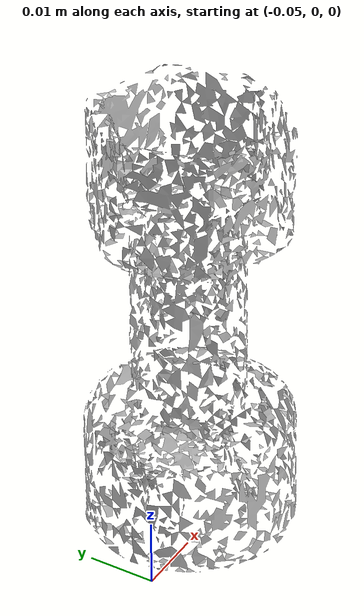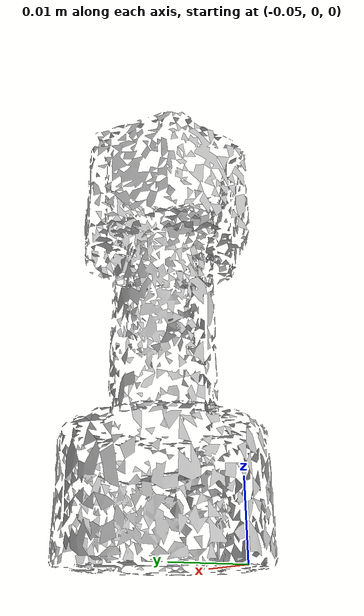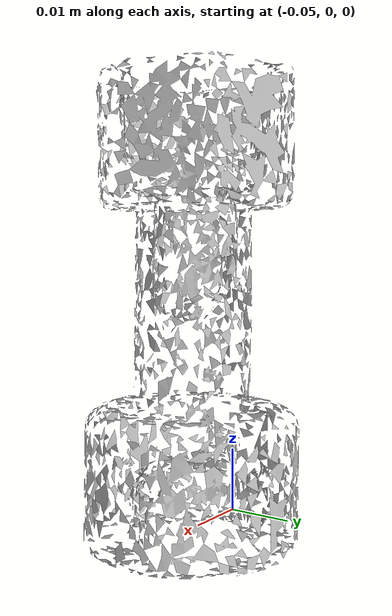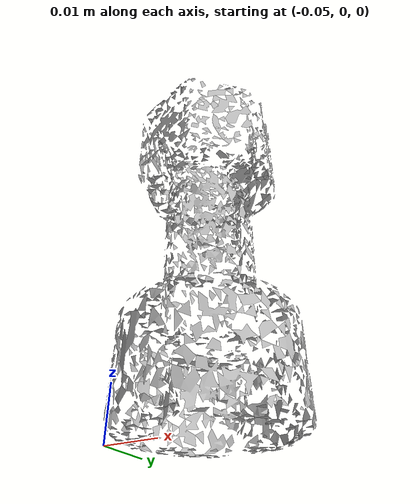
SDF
<?xml version='1.0'?>
<sdf version="1.4">
  <model name="c_toy_airplane">
    <static>false</static>
    <link name="link">
      <inertial>
        <pose>-0.033398753233434206 0.003384443109879014 0.02614525198224048 -0.013616438506469764 -0.015600262208349506 0.7695477256379782</pose>
        <mass>2.0862498027561836e-05</mass>
        <inertia>
          <ixx>9.203715550767975e-09</ixx>
          <ixy>-3.1668428287451446e-24</ixy>
          <ixz>-3.377449081467018e-24</ixz>
          <iyy>9.190425263918027e-09</iyy>
          <iyz>-4.147907807841481e-24</iyz>
          <izz>2.319591434619968e-09</izz>
        </inertia>
      </inertial>
      <collision name="collision">
        <geometry>
          <mesh>
            <!-- Use a downsampled mesh for collisions -->
            <uri>model://072-c_toy_airplane/downsampled.obj</uri>
	        </mesh>
        </geometry>
        <surface>
      </surface>
      </collision>
      <visual name="visual">
        <geometry>
          <mesh>
            <uri>model://072-c_toy_airplane/google_16k/textured.obj</uri>
	        </mesh>
        </geometry>
        <material>
          <script>
            <uri>model://072-c_toy_airplane/c_toy_airplane.material</uri>
            <name>c_toy_airplane</name>
          </script>
        </material>
      </visual>
    </link>
  </model>
</sdf>
